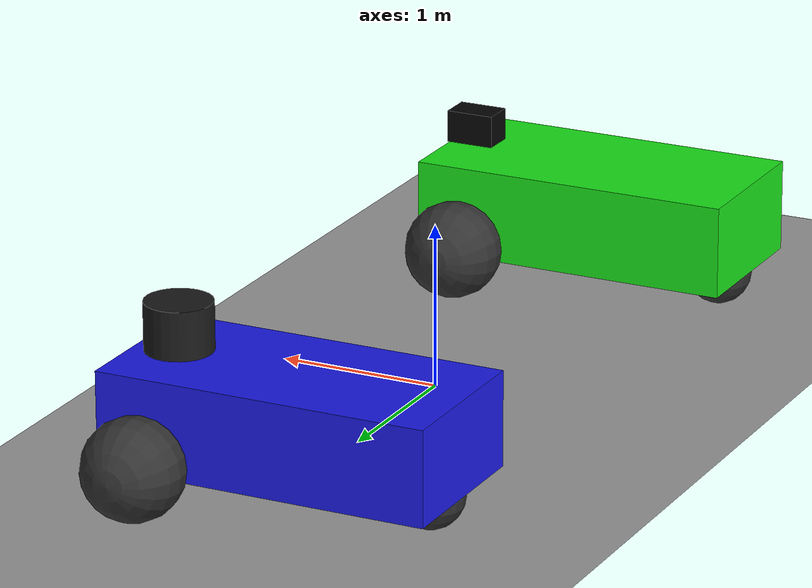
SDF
<?xml version="1.0" ?>
<sdf version="1.7">
  <world name="demo">
    <!-- When we declare sytem here this automatically overrides the default so everything else gets disabled -->
  <!-- Ensure the physics system is loaded -->
  <plugin filename="ignition-gazebo-physics-system"
          name="ignition::gazebo::systems::Physics">
  </plugin>
  <!-- Ensure the sensors system is loaded -->
  <plugin filename="libignition-gazebo-sensors-system.so"
          name="ignition::gazebo::systems::Sensors">
    <render_engine>ogre2</render_engine>
  </plugin>

  <plugin filename="libignition-gazebo-imu-system.so"
        name="ignition::gazebo::systems::Imu">
  </plugin>

  <plugin filename="ignition-gazebo-scene-broadcaster-system"
          name="ignition::gazebo::systems::SceneBroadcaster"/>
  <plugin filename="ignition-gazebo-user-commands-system"
          name="ignition::gazebo::systems::UserCommands"/>

  <plugin filename="libignition-gazebo-pose-publisher-system.so"
        name="ignition::gazebo::systems::PosePublisher">
        <publish_link_pose>true</publish_link_pose>
        <publish_sensor_pose>true</publish_sensor_pose>
        <publish_collision_pose>false</publish_collision_pose>
        <publish_visual_pose>false</publish_visual_pose>
        <!-- ERB removed: always publish nested model poses for ground-truth -->
        <publish_nested_model_pose>true</publish_nested_model_pose>
        <use_pose_vector_msg>true</use_pose_vector_msg>
        <static_publisher>true</static_publisher>
        <static_update_frequency>1</static_update_frequency>
    </plugin>

    <gravity>0 0 -9.8</gravity>

    <!-- Sun -->
    <light name="sun" type="directional">
      <pose>0 0 10 0 0 0</pose>
      <diffuse>1 1 1 1</diffuse>
      <specular>0.1 0.1 0.1 1</specular>
      <direction>-0.5 0.5 -1</direction>
    </light>

    <!-- Flat ground -->
    <model name="ground_plane">
      <static>true</static>
      <link name="link">
        <collision name="collision">
          <geometry><plane><normal>0 0 1</normal><size>200 200</size></plane></geometry>
        </collision>
        <visual name="visual">
          <geometry><plane><normal>0 0 1</normal><size>200 200</size></plane></geometry>
          <material><diffuse>0.6 0.6 0.6 1</diffuse></material>
        </visual>
      </link>
    </model>

    <!-- Vehicles -->
    <include>
      <uri>model://vehicle_blue</uri>
      <name>vehicle_blue</name>
      <!-- lift Z so wheels clear ground -->
      <pose>0 2 0.35 0 0 0</pose>
    </include>

    <include>
      <uri>model://vehicle_green</uri>
      <name>vehicle_green</name>
      <!-- lift Z so wheels clear ground -->
      <pose>0 -2 0.35 0 0 0</pose>
    </include>

  </world>
</sdf>

      <!-- Room walls (10x10m, 1.5m high, 0.2m thick) -->
      <!-- North wall split to leave a 1.0m door gap at x=0 -->
      <model name="wall_north_left">
        <static>true</static>
        <pose>-2.75 5 0.75 0 0 0</pose>
        <link name="link">
        <collision name="collision">
          <geometry><box><size>4.5 0.2 1.5</size></box></geometry>
        </collision>
        <visual name="visual">
          <geometry><box><size>4.5 0.2 1.5</size></box></geometry>
          <material><diffuse>0.5 0.5 0.5 1</diffuse></material>
        </visual>
        </link>
      </model>

      <model name="wall_north_right">
        <static>true</static>
        <pose>2.75 5 0.75 0 0 0</pose>
        <link name="link">
        <collision name="collision">
          <geometry><box><size>4.5 0.2 1.5</size></box></geometry>
        </collision>
        <visual name="visual">
          <geometry><box><size>4.5 0.2 1.5</size></box></geometry>
          <material><diffuse>0.5 0.5 0.5 1</diffuse></material>
        </visual>
        </link>
      </model>

      <model name="wall_south">
        <static>true</static>
        <pose>0 -5 0.75 0 0 0</pose>
        <link name="link">
        <collision name="collision">
          <geometry><box><size>10 0.2 1.5</size></box></geometry>
        </collision>
        <visual name="visual">
          <geometry><box><size>10 0.2 1.5</size></box></geometry>
          <material><diffuse>0.5 0.5 0.5 1</diffuse></material>
        </visual>
        </link>
      </model>

      <model name="wall_east">
        <static>true</static>
        <pose>5 0 0.75 0 0 0</pose>
        <link name="link">
        <collision name="collision">
          <geometry><box><size>0.2 10 1.5</size></box></geometry>
        </collision>
        <visual name="visual">
          <geometry><box><size>0.2 10 1.5</size></box></geometry>
          <material><diffuse>0.5 0.5 0.5 1</diffuse></material>
        </visual>
        </link>
      </model>

      <model name="wall_west">
        <static>true</static>
        <pose>-5 0 0.75 0 0 0</pose>
        <link name="link">
        <collision name="collision">
          <geometry><box><size>0.2 10 1.5</size></box></geometry>
        </collision>
        <visual name="visual">
          <geometry><box><size>0.2 10 1.5</size></box></geometry>
          <material><diffuse>0.5 0.5 0.5 1</diffuse></material>
        </visual>
        </link>
      </model>

      <!-- Hinged door in the north wall (1.0m wide, 1.5m tall, 0.05m thick) -->
      <model name="swing_door">
        <!-- Place hinge on the north wall line at y=5, z at mid-height -->
        <pose>0 5 0.75 0 0 0</pose>
        <self_collide>false</self_collide>

        <!-- Door frame/jamb (fixed in place) -->
        <link name="frame">
        <inertial><mass>10</mass>
          <inertia>
          <ixx>1</ixx><iyy>1</iyy><izz>1</izz>
          <ixy>0</ixy><ixz>0</ixz><iyz>0</iyz>
          </inertia>
        </inertial>
        <collision name="collision">
          <geometry><box><size>0.1 0.2 1.5</size></box></geometry>
        </collision>
        <visual name="visual">
          <geometry><box><size>0.1 0.2 1.5</size></box></geometry>
          <material><diffuse>0.2 0.2 0.2 1</diffuse></material>
        </visual>
        </link>

        <!-- Door leaf: origin at hinge; geometry offset 0.5m along +X -->
        <link name="leaf">
        <inertial><mass>5</mass>
          <inertia>
          <ixx>1</ixx><iyy>1</iyy><izz>0.5</izz>
          <ixy>0</ixy><ixz>0</ixz><iyz>0</iyz>
          </inertia>
        </inertial>
        <collision name="collision">
          <pose>0.5 0 0 0 0 0</pose>
          <geometry><box><size>1.0 0.05 1.5</size></box></geometry>
        </collision>
        <visual name="visual">
          <pose>0.5 0 0 0 0 0</pose>
          <geometry><box><size>1.0 0.05 1.5</size></box></geometry>
          <material><diffuse>0.6 0.4 0.2 1</diffuse></material>
        </visual>
        </link>

        <!-- Revolute hinge around Z (vertical). Angle 0 = closed (in wall plane) -->
        <joint name="hinge" type="revolute">
        <parent>frame</parent>
        <child>leaf</child>
        <pose>0 0 0 0 0 0</pose>
        <axis>
          <xyz>0 0 1</xyz>
          <limit>
          <lower>-1.57</lower>   <!-- ~ -90 deg (opens inward) -->
          <upper>1.57</upper>    <!-- ~  90 deg -->
          </limit>
          <dynamics>
          <damping>0.5</damping>
          </dynamics>
        </axis>
        </joint>
      </model>

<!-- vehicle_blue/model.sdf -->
<sdf version="1.8">
    <model name='vehicle'>
      <link name='chassis'>
        <pose>-0.151427 -0 0.175 0 -0 0</pose>
        <inertial>
          <mass>1.14395</mass>
          <inertia>
            <ixx>0.126164</ixx>
            <ixy>0</ixy>
            <ixz>0</ixz>
            <iyy>0.416519</iyy>
            <iyz>0</iyz>
            <izz>0.481014</izz>
          </inertia>
        </inertial>
        <visual name="chassis_visual">
          <geometry>
            <box>
              <size>2.01142 1 0.568726</size>
            </box>
          </geometry>
          <material>
            <ambient>0.05 0.05 0.6 1</ambient>
            <diffuse>0.1 0.1 0.9 1</diffuse>
            <specular>0.5 0.5 0.5 1</specular>
          </material>
        </visual>
        <collision name='collision_chassis'>
          <geometry>
            <box>
              <size>2.01142 1 0.568726</size>
            </box>
          </geometry>
        </collision>
      </link>

      <link name='lidar_link'>
        <pose>0.6 0 0.6 0 0 0</pose>
        <inertial>
          <mass>0.1</mass>
          <inertia>
            <ixx>0.0001</ixx>
            <ixy>0</ixy>
            <ixz>0</ixz>
            <iyy>0.0001</iyy>
            <iyz>0</iyz>
            <izz>0.0001</izz>
          </inertia>
        </inertial>

        <visual name='lidar_visual'>
          <geometry>
            <cylinder>
              <radius>0.2</radius>
              <length>0.3</length>
            </cylinder>
          </geometry>
          <material>
            <ambient>0.1 0.1 0.1 1</ambient>
            <diffuse>0.1 0.1 0.1 1</diffuse>
            <specular>0.1 0.1 0.1 1</specular>
          </material>
        </visual>

        <sensor name="gpu_lidar" type="gpu_lidar">
          <topic>/lidar</topic>
          <update_rate>20</update_rate>
          <visualize>true</visualize>
          <lidar>
            <scan>
              <horizontal>
                <samples>360</samples> <resolution>1</resolution> <min_angle>-3.14159</min_angle>
                <max_angle>3.14159</max_angle>
              </horizontal>
            </scan>
            <range>
              <min>0.2</min>    <max>12.0</max>   <resolution>0.01</resolution>
            </range>
            <noise>
              <type>gaussian</type>
              <mean>0.0</mean>
              <stddev>0.02</stddev>
            </noise>
          </lidar>
        </sensor>
      </link>

      <link name='imu_link'>
        <pose>0 0 0.3 0 0 0</pose>
        <inertial>
          <mass>0.01</mass>
          <inertia>
            <ixx>1.6e-6</ixx>
            <ixy>0</ixy>
            <ixz>0</ixz>
            <iyy>1.6e-6</iyy>
            <iyz>0</iyz>
            <izz>1.6e-6</izz>
          </inertia>
        </inertial>

        <sensor name="imu_sensor" type="imu">
          <topic>/imu</topic>
          <update_rate>20</update_rate>
          <always_on>true</always_on>
          <visualize>true</visualize>
          <imu>
              <angular_velocity>
                <x>
                  <noise type='gaussian'>
                    <mean>0.0</mean>
                    <stddev>0.005</stddev>
                  </noise>
                </x>
                <y>
                  <noise type='gaussian'>
                    <mean>0.0</mean>
                    <stddev>0.005</stddev>
                  </noise>
                </y>
                <z>
                  <noise type='gaussian'>
                    <mean>0.0</mean>
                    <stddev>0.005</stddev>
                  </noise>
                </z>
              </angular_velocity>
              <linear_acceleration>
                <x>
                  <noise type='gaussian'>
                    <mean>0.0</mean>
                    <stddev>0.01</stddev>
                  </noise>
                </x>
                <y>
                  <noise type='gaussian'>
                    <mean>0.0</mean>
                    <stddev>0.01</stddev>
                  </noise>
                </y>
                <z>
                  <noise type='gaussian'>
                    <mean>0.0</mean>
                    <stddev>0.01</stddev>
                  </noise>
                </z>
              </linear_acceleration>
          </imu>
        </sensor>
      </link>

      <link name='left_wheel'>
        <pose>0.554283 0.625029 -0.025 -1.5707 0 0</pose>
        <inertial>
          <mass>2</mass>
          <inertia>
            <ixx>0.145833</ixx>
            <ixy>0</ixy>
            <ixz>0</ixz>
            <iyy>0.145833</iyy>
            <iyz>0</iyz>
            <izz>0.125</izz>
          </inertia>
        </inertial>
        <visual name='visual_left_wheel'>
          <geometry>
            <sphere>
              <radius>0.3</radius>
            </sphere>
          </geometry>
          <material>
            <ambient>0.2 0.2 0.2 1</ambient>
            <diffuse>0.2 0.2 0.2 1</diffuse>
            <specular>0.2 0.2 0.2 1</specular>
          </material>
        </visual>
        <collision name='collision_left_wheel'>
          <geometry>
            <sphere>
              <radius>0.3</radius>
            </sphere>
          </geometry>
          <surface>
            <friction>
              <ode>
                <mu>1.0</mu>   <mu2>1.0</mu2>  <slip1>0.0</slip1> <slip2>0.0</slip2> </ode>
            </friction>
            <contact>
              <ode>
                <min_depth>0.001</min_depth>
                <kp>1e8</kp>
              </ode>
            </contact>
        </surface>
        </collision>
      </link>

      <link name='right_wheel'>
        <pose>0.554282 -0.625029 -0.025 -1.5707 0 0</pose>
        <inertial>
          <mass>2</mass>
          <inertia>
            <ixx>0.145833</ixx>
            <ixy>0</ixy>
            <ixz>0</ixz>
            <iyy>0.145833</iyy>
            <iyz>0</iyz>
            <izz>0.125</izz>
          </inertia>
        </inertial>
        <visual name='visual_right_wheel'>
          <geometry>
            <sphere>
              <radius>0.3</radius>
            </sphere>
          </geometry>
          <material>
            <ambient>0.2 0.2 0.2 1</ambient>
            <diffuse>0.2 0.2 0.2 1</diffuse>
            <specular>0.2 0.2 0.2 1</specular>
          </material>
        </visual>
        <collision name='collision_right_wheel'>
          <geometry>
            <sphere>
              <radius>0.3</radius>
            </sphere>
          </geometry>
            <surface>
              <friction>
                <ode>
                  <mu>1.0</mu>   <mu2>1.0</mu2>  <slip1>0.0</slip1> <slip2>0.0</slip2> </ode>
              </friction>
              <contact>
                <ode>
                  <min_depth>0.001</min_depth>
                  <kp>1e8</kp>
                </ode>
              </contact>
            </surface>
        </collision>
      </link>

      <link name='caster'>
        <pose>-0.957138 -0 -0.125 0 -0 0</pose>
        <inertial>
          <mass>1</mass>
          <inertia>
            <ixx>0.1</ixx>
            <ixy>0</ixy>
            <ixz>0</ixz>
            <iyy>0.1</iyy>
            <iyz>0</iyz>
            <izz>0.1</izz>
          </inertia>
        </inertial>
        <visual name='visual_caster'>
          <geometry>
            <sphere>
              <radius>0.2</radius>
            </sphere>
          </geometry>
          <material>
            <ambient>0.2 0.2 0.2 1</ambient>
            <diffuse>0.2 0.2 0.2 1</diffuse>
            <specular>0.2 0.2 0.2 1</specular>
          </material>
        </visual>
        <collision name='collision_caster'>
          <geometry>
            <sphere>
              <radius>0.2</radius>
            </sphere>
          </geometry>
        </collision>
      </link>

      <joint name='lidar_joint' type='fixed'>
        <parent>chassis</parent>
        <child>lidar_link</child>
      </joint>

      <joint name='imu_joint' type='fixed'>
        <parent>chassis</parent>
        <child>imu_link</child>
      </joint>

      <joint name='left_wheel_joint' type='revolute'>
        <parent>chassis</parent>
        <child>left_wheel</child>
        <axis>
          <xyz>0 0 1</xyz>  <!-- rotate around Y to roll forward -->
          <limit>
            <lower>-1.79769e+308</lower>
            <upper>1.79769e+308</upper>
          </limit>
        </axis>
      </joint>

      <joint name='right_wheel_joint' type='revolute'>
        <parent>chassis</parent>
        <child>right_wheel</child>
        <axis>
          <xyz>0 0 1</xyz>  <!-- rotate around Y to roll forward -->
          <limit>
            <lower>-1.79769e+308</lower>
            <upper>1.79769e+308</upper>
          </limit>
        </axis>
      </joint>

      <joint name='caster_wheel' type='ball'>
        <parent>chassis</parent>
        <child>caster</child>
      </joint>

      <plugin
        filename="ignition-gazebo-diff-drive-system"
        name="ignition::gazebo::systems::DiffDrive">
        <odom_noise_xyz>0.001 0.001 0.001</odom_noise_xyz>
        <odom_noise_rpy>0.001 0.001 0.001</odom_noise_rpy>
        <left_joint>left_wheel_joint</left_joint>
        <right_joint>right_wheel_joint</right_joint>
        <wheel_separation>1.25</wheel_separation>
        <wheel_radius>0.3</wheel_radius>
        <odom_publish_frequency>20</odom_publish_frequency>
        <max_linear_acceleration>1</max_linear_acceleration>
        <min_linear_acceleration>-1</min_linear_acceleration>
        <max_angular_acceleration>2</max_angular_acceleration>
        <min_angular_acceleration>-2</min_angular_acceleration>
        <max_linear_velocity>0.5</max_linear_velocity>
        <min_linear_velocity>-0.5</min_linear_velocity>
        <max_angular_velocity>1</max_angular_velocity>
        <min_angular_velocity>-1</min_angular_velocity>
      </plugin>

      <plugin filename="libignition-gazebo-pose-publisher-system.so"
              name="ignition::gazebo::systems::PosePublisher">
        <publish_link_pose>true</publish_link_pose>
        <publish_sensor_pose>true</publish_sensor_pose>
        <publish_collision_pose>false</publish_collision_pose>
        <publish_visual_pose>false</publish_visual_pose>
        <publish_nested_model_pose>false</publish_nested_model_pose>
        <use_pose_vector_msg>true</use_pose_vector_msg>
        <static_publisher>true</static_publisher>
        <update_frequency>20.0</update_frequency>
      </plugin>

    </model>
</sdf>

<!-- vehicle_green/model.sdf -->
<sdf version="1.8">
    <model name='vehicle'>
      <link name='chassis'>
        <pose>-0.151427 -0 0.175 0 -0 0</pose>
        <inertial>
          <mass>1.14395</mass>
          <inertia>
            <ixx>0.126164</ixx>
            <ixy>0</ixy>
            <ixz>0</ixz>
            <iyy>0.416519</iyy>
            <iyz>0</iyz>
            <izz>0.481014</izz>
          </inertia>
        </inertial>
        <visual name="chassis_visual">
          <geometry>
            <box>
              <size>2.01142 1 0.568726</size>
            </box>
          </geometry>
          <material>
            <ambient>0.05 0.5 0.05 1</ambient>
            <diffuse>0.1 0.9 0.1 1</diffuse>
            <specular>0.5 0.5 0.5 1</specular>
          </material>
        </visual>
        <collision name='collision_chassis'>
          <geometry>
            <box>
              <size>2.01142 1 0.568726</size>
            </box>
          </geometry>
        </collision>

        <!-- RGB-D camera mounted on the chassis -->
        <sensor name="rgbd" type="rgbd_camera">
          <!-- x forward, raise a bit -->
          <pose>0.85 0 0.40 0 0 0</pose>
          <always_on>true</always_on>
          <update_rate>20</update_rate>
          <visualize>true</visualize>

          <!-- Base topic; Ign will publish /camera/image and /camera/depth_image -->
          <topic>/camera</topic>

          <camera>
            <horizontal_fov>1.047</horizontal_fov> <!-- ~60 deg -->
            <image>
              <width>640</width>
              <height>480</height>
              <format>R8G8B8</format>
            </image>
            <clip>
              <near>0.1</near>
              <far>15.0</far>
            </clip>
            <noise>
              <type>gaussian</type>
              <mean>0.0</mean>
              <stddev>0.007</stddev>
            </noise>
          </camera>
        </sensor>

        <!-- camera visual box -->
        <visual name="camera_box_visual">
          <pose>0.85 0 0.40 0 0 0</pose>
          <geometry><box><size>0.30 0.20 0.20</size></box></geometry>
          <material>
            <ambient>0.02 0.02 0.02 1</ambient>
            <diffuse>0.02 0.02 0.02 1</diffuse>
            <specular>0.1 0.1 0.1 1</specular>
          </material>
        </visual>
      </link>

      <link name='left_wheel'>
        <pose>0.554283 0.625029 -0.025 -1.5707 0 0</pose>
        <inertial>
          <mass>2</mass>
          <inertia>
            <ixx>0.145833</ixx>
            <ixy>0</ixy>
            <ixz>0</ixz>
            <iyy>0.145833</iyy>
            <iyz>0</iyz>
            <izz>0.125</izz>
          </inertia>
        </inertial>
        <visual name='visual_left_wheel'>
          <geometry>
            <sphere>
              <radius>0.3</radius>
            </sphere>
          </geometry>
          <material>
            <ambient>0.2 0.2 0.2 1</ambient>
            <diffuse>0.2 0.2 0.2 1</diffuse>
            <specular>0.2 0.2 0.2 1</specular>
          </material>
        </visual>
        <collision name='collision_left_wheel'>
          <geometry>
            <sphere>
              <radius>0.3</radius>
            </sphere>
          </geometry>
          <surface>
            <friction>
              <ode>
                <mu>1.0</mu>   <mu2>1.0</mu2>  <slip1>0.0</slip1> <slip2>0.0</slip2> </ode>
            </friction>
            <contact>
              <ode>
                <min_depth>0.001</min_depth>
                <kp>1e8</kp>
              </ode>
            </contact>
          </surface>
        </collision>
      </link>

      <link name='right_wheel'>
        <pose>0.554282 -0.625029 -0.025 -1.5707 0 0</pose>
        <inertial>
          <mass>2</mass>
          <inertia>
            <ixx>0.145833</ixx>
            <ixy>0</ixy>
            <ixz>0</ixz>
            <iyy>0.145833</iyy>
            <iyz>0</iyz>
            <izz>0.125</izz>
          </inertia>
        </inertial>
        <visual name='visual_right_wheel'>
          <geometry>
            <sphere>
              <radius>0.3</radius>
            </sphere>
          </geometry>
          <material>
            <ambient>0.2 0.2 0.2 1</ambient>
            <diffuse>0.2 0.2 0.2 1</diffuse>
            <specular>0.2 0.2 0.2 1</specular>
          </material>
        </visual>
        <collision name='collision_right_wheel'>
          <geometry>
            <sphere>
              <radius>0.3</radius>
            </sphere>
          </geometry>
          <surface>
            <friction>
              <ode>
                <mu>1.0</mu>   <mu2>1.0</mu2>  <slip1>0.0</slip1> <slip2>0.0</slip2> </ode>
            </friction>
            <contact>
              <ode>
                <min_depth>0.001</min_depth>
                <kp>1e8</kp>
              </ode>
            </contact>
          </surface>
        </collision>
      </link>

      <link name='caster'>
        <pose>-0.957138 -0 -0.125 0 -0 0</pose>
        <inertial>
          <mass>1</mass>
          <inertia>
            <ixx>0.1</ixx>
            <ixy>0</ixy>
            <ixz>0</ixz>
            <iyy>0.1</iyy>
            <iyz>0</iyz>
            <izz>0.1</izz>
          </inertia>
        </inertial>
        <visual name='visual_caster'>
          <geometry>
            <sphere>
              <radius>0.2</radius>
            </sphere>
          </geometry>
          <material>
            <ambient>0.2 0.2 0.2 1</ambient>
            <diffuse>0.2 0.2 0.2 1</diffuse>
            <specular>0.2 0.2 0.2 1</specular>
          </material>
        </visual>
        <collision name='collision_caster'>
          <geometry>
            <sphere>
              <radius>0.2</radius>
            </sphere>
          </geometry>
        </collision>
      </link>

      <link name="camera_link_green">
        <pose>0.3 0 0.4 0 0 0</pose>
        <inertial><mass>0.1</mass></inertial>
        <!-- No duplicate sensor here; the chassis rgbd sensor is the single source -->
      </link>

      <joint name='left_wheel_joint' type='revolute'>
        <parent>chassis</parent>
        <child>left_wheel</child>
        <axis>
          <xyz>0 0 1</xyz>
          <limit>
            <lower>-1.79769e+308</lower>
            <upper>1.79769e+308</upper>
          </limit>
        </axis>
      </joint>

      <joint name='right_wheel_joint' type='revolute'>
        <parent>chassis</parent>
        <child>right_wheel</child>
        <axis>
          <xyz>0 0 1</xyz>
          <limit>
            <lower>-1.79769e+308</lower>
            <upper>1.79769e+308</upper>
          </limit>
        </axis>
      </joint>

      <joint name='caster_wheel' type='ball'>
        <parent>chassis</parent>
        <child>caster</child>
      </joint>

      <plugin
        filename="ignition-gazebo-diff-drive-system"
        name="ignition::gazebo::systems::DiffDrive">
        <odom_noise_xyz>0.001 0.001 0.001</odom_noise_xyz>
        <odom_noise_rpy>0.001 0.001 0.001</odom_noise_rpy>
        <left_joint>left_wheel_joint</left_joint>
        <right_joint>right_wheel_joint</right_joint>
        <wheel_separation>1.25</wheel_separation>
        <wheel_radius>0.3</wheel_radius>
        <odom_publish_frequency>20</odom_publish_frequency>
        <max_linear_acceleration>1</max_linear_acceleration>
        <min_linear_acceleration>-1</min_linear_acceleration>
        <max_angular_acceleration>2</max_angular_acceleration>
        <min_angular_acceleration>-2</min_angular_acceleration>
        <max_linear_velocity>0.5</max_linear_velocity>
        <min_linear_velocity>-0.5</min_linear_velocity>
        <max_angular_velocity>1</max_angular_velocity>
        <min_angular_velocity>-1</min_angular_velocity>
      </plugin>

      <plugin filename="libignition-gazebo-pose-publisher-system.so"
              name="ignition::gazebo::systems::PosePublisher">
        <publish_link_pose>true</publish_link_pose>
        <publish_sensor_pose>true</publish_sensor_pose>
        <publish_collision_pose>false</publish_collision_pose>
        <publish_visual_pose>false</publish_visual_pose>
        <publish_nested_model_pose>false</publish_nested_model_pose>
        <use_pose_vector_msg>true</use_pose_vector_msg>
        <static_publisher>true</static_publisher>
        <update_frequency>20.0</update_frequency>
      </plugin>
    </model>
</sdf>
